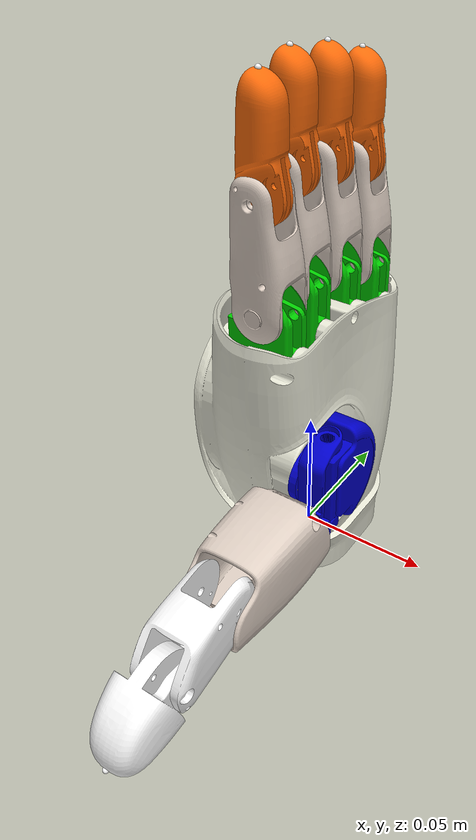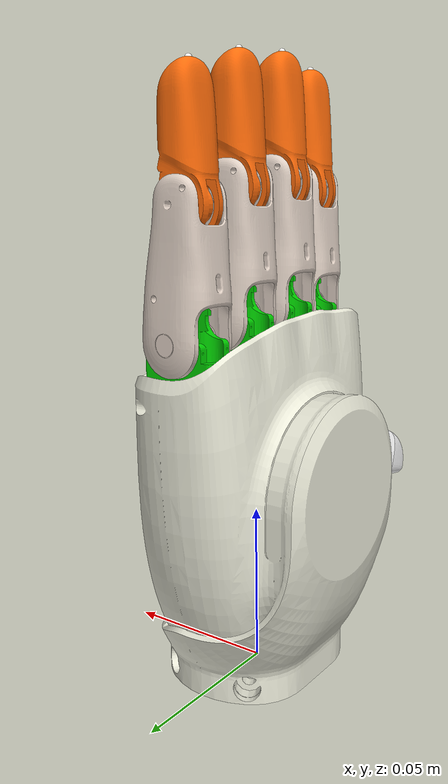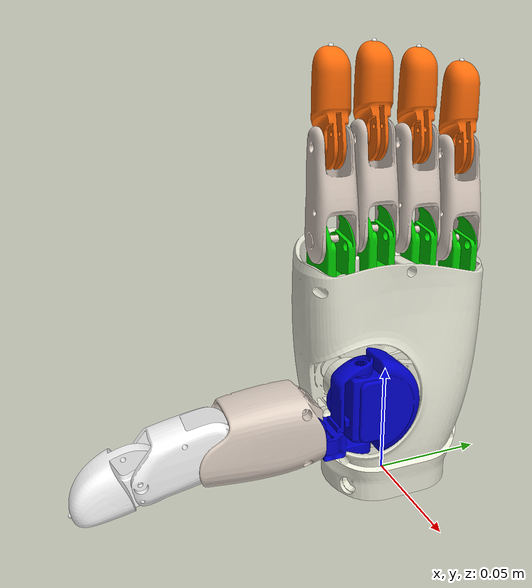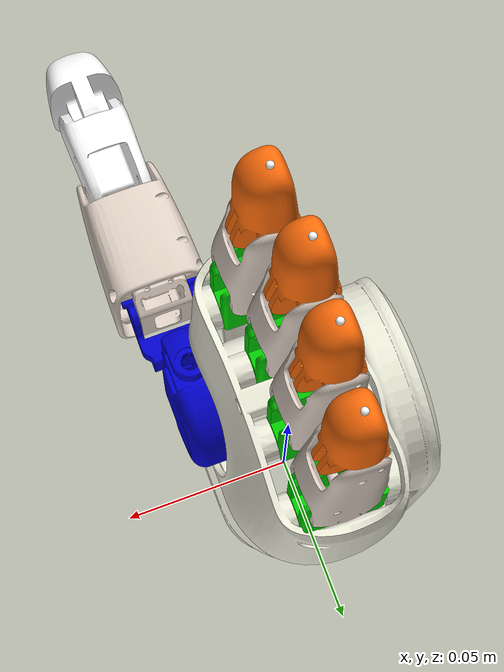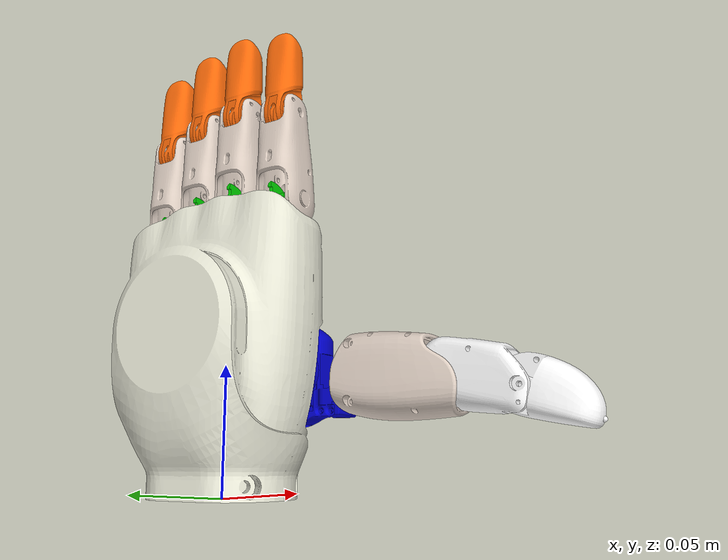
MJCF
<mujoco model="omnihand_left">
  <compiler angle="radian" meshdir="../meshes/" autolimits="true"/>
  <option timestep="0.002" gravity="0 0 -9.81"/>

  <default>
    <joint damping="0.01"/>
    <geom friction="1 0.005 0.001" condim="4"/>
  </default>

  <asset>
    <mesh name="l_palm" file="l_palm.STL"/>
    <mesh name="l_thumb_roll" file="l_thumb_roll.STL"/>
    <mesh name="thumb_abad" file="thumb_abad.STL"/>
    <mesh name="thumb_mcp" file="thumb_mcp.STL"/>
    <mesh name="thumb_pip" file="thumb_pip.STL"/>
    <mesh name="thumb_dip" file="thumb_dip.STL"/>
    <mesh name="finger_abad" file="finger_abad.STL"/>
    <mesh name="finger_pip" file="finger_pip.STL"/>
    <mesh name="finger_dip" file="finger_dip.STL"/>
  </asset>

  <worldbody>
    <body name="base_link" pos="0 0 0">
      <!-- L_palm (fixed to base_link) -->
      <body name="L_palm" pos="0 0 0">
        <inertial pos="0.0035098 -0.0445331 -0.0066051" mass="0.1594"
                  fullinertia="0.0001025 9.973e-05 0.00015087 3.1e-06 9.7e-07 8.3e-07"/>
        <geom type="mesh" mesh="l_palm" rgba="0.914 0.914 0.847 1"/>

        <!-- ========== Thumb chain ========== -->
        <body name="L_thumb_roll" pos="0 -0.018521 0.047551">
          <inertial pos="-0.003851 0.000311 0.008401" mass="0.025"
                    fullinertia="2.86e-06 2.01e-06 3.69e-06 0 3e-08 -5e-08"/>
          <joint name="L_thumb_roll_joint" type="hinge" axis="1 0 0" range="-0.8727 0.1745"/>
          <geom type="mesh" mesh="l_thumb_roll" rgba="0 0 0.8 1"/>

          <body name="L_thumb_abad" pos="0.020801 -0.004292 -0.00052506">
            <inertial pos="-1.2e-06 -0.0129928 -0.0041829" mass="0.0056"
                      fullinertia="1.03e-06 8.8e-07 5.2e-07 0 0 6e-08"/>
            <joint name="L_thumb_abad_joint" type="hinge" axis="0 0 1" range="0 1.7453"/>
            <geom type="mesh" mesh="thumb_abad" euler="0 0 3.14159265" rgba="0 0 0.8 1"/>

            <body name="L_thumb_mcp" pos="0 -0.0265 -0.005275">
              <inertial pos="-1.83e-05 -0.0225829 0.0024013" mass="0.0511"
                        fullinertia="1.274e-05 4.72e-06 1.121e-05 1e-08 0 2.8e-07"/>
              <joint name="L_thumb_mcp_joint" type="hinge" axis="1 0 0" range="-0.8552 0"/>
              <geom type="mesh" mesh="thumb_mcp" euler="0 0 3.14159265" rgba="0.871 0.812 0.765 1"/>

              <body name="L_thumb_pip" pos="0 -0.036231 0.0036755">
                <inertial pos="-1e-06 -0.014461 -0.00415" mass="0.011"
                          fullinertia="1.34e-06 7.9e-07 1.31e-06 0 0 -7e-08"/>
                <joint name="L_thumb_pip_joint" type="hinge" axis="1 0 0" range="-1.14 0"/>
                <geom type="mesh" mesh="thumb_pip" euler="0 0 3.14159265" rgba="1 1 1 1"/>

                <body name="L_thumb_dip" pos="0 -0.026468 -0.0073106">
                  <inertial pos="-3e-06 -0.010392 -0.001614" mass="0.007"
                            fullinertia="5.2e-07 3.3e-07 4.4e-07 0 0 1.6e-07"/>
                  <joint name="L_thumb_dip_joint" type="hinge" axis="1 0 0" range="-1.22 0"/>
                  <geom type="mesh" mesh="thumb_dip" euler="0 0 3.14159265" rgba="1 1 1 1"/>

                  <site name="L_thumb_tip" pos="0 -0.02392 -0.01158" size="0.001" rgba="1 1 1 1"/>
                </body>
              </body>
            </body>
          </body>
        </body>

        <!-- ========== Index finger chain ========== -->
        <body name="L_index_abad" pos="0 -0.02695 0.094548">
          <inertial pos="-0.0018959 -9.8e-06 0.0066855" mass="0.04"
                    fullinertia="7.37e-06 8.82e-06 2.65e-06 0 -1.4e-07 0"/>
          <joint name="L_index_abad_joint" type="hinge" axis="1 0 0" range="0 0.2094"/>
          <geom type="mesh" mesh="finger_abad" rgba="0 0.8 0 1"/>

          <body name="L_index_pip" pos="0.00048163 0 0.017575">
            <inertial pos="-0.002884 1.5e-06 0.019997" mass="0.004"
                      fullinertia="7e-07 6.8e-07 2.6e-07 0 1e-08 0"/>
            <joint name="L_index_pip_joint" type="hinge" axis="0 1 0" range="0 1.5708"/>
            <geom type="mesh" mesh="finger_pip" rgba="0.871 0.812 0.765 1"/>

            <body name="L_index_dip" pos="-0.0015 0 0.036">
              <inertial pos="0.000618 0 0.019239" mass="0.003"
                        fullinertia="4e-07 4e-07 1.2e-07 0 0 0"/>
              <joint name="L_index_dip_joint" type="hinge" axis="0 1 0" range="0 2.03"/>
              <geom type="mesh" mesh="finger_dip" rgba="1 0.424 0.039 1"/>

              <site name="L_index_tip" pos="-0.0011 0 0.03612" size="0.001" rgba="1 1 1 1"/>
            </body>
          </body>
        </body>

        <!-- ========== Middle finger chain (abad is fixed) ========== -->
        <body name="L_middle_abad" pos="-0.0025 -0.00795 0.096548">
          <inertial pos="-0.0018959 -9.8e-06 0.0066855" mass="0.04"
                    fullinertia="7.37e-06 8.82e-06 2.65e-06 0 -1.4e-07 0"/>
          <geom type="mesh" mesh="finger_abad" rgba="0 0.8 0 1"/>

          <body name="L_middle_pip" pos="0.00048163 0 0.017575">
            <inertial pos="-0.002884 1.5e-06 0.019997" mass="0.004"
                      fullinertia="7e-07 6.8e-07 2.6e-07 0 1e-08 0"/>
            <joint name="L_middle_pip_joint" type="hinge" axis="0 1 0" range="0 1.5708"/>
            <geom type="mesh" mesh="finger_pip" rgba="0.871 0.812 0.765 1"/>

            <body name="L_middle_dip" pos="-0.0015 0 0.036">
              <inertial pos="0.000618 0 0.019239" mass="0.003"
                        fullinertia="4e-07 4e-07 1.2e-07 0 0 0"/>
              <joint name="L_middle_dip_joint" type="hinge" axis="0 1 0" range="0 2.03"/>
              <geom type="mesh" mesh="finger_dip" rgba="1 0.424 0.039 1"/>

              <site name="L_middle_tip" pos="-0.0011 0 0.03612" size="0.001" rgba="1 1 1 1"/>
            </body>
          </body>
        </body>

        <!-- ========== Ring finger chain ========== -->
        <body name="L_ring_abad" pos="-0.00151 0.01105 0.094548">
          <inertial pos="-0.0018959 -9.8e-06 0.0066855" mass="0.04"
                    fullinertia="7.37e-06 8.82e-06 2.65e-06 0 -1.4e-07 0"/>
          <joint name="L_ring_abad_joint" type="hinge" axis="1 0 0" range="-0.1745 0"/>
          <geom type="mesh" mesh="finger_abad" rgba="0 0.8 0 1"/>

          <body name="L_ring_pip" pos="0.00048163 0 0.017575">
            <inertial pos="-0.002884 1.5e-06 0.019997" mass="0.004"
                      fullinertia="7e-07 6.8e-07 2.6e-07 0 1e-08 0"/>
            <joint name="L_ring_pip_joint" type="hinge" axis="0 1 0" range="0 1.5708"/>
            <geom type="mesh" mesh="finger_pip" rgba="0.871 0.812 0.765 1"/>

            <body name="L_ring_dip" pos="-0.0015 0 0.036">
              <inertial pos="0.000618 0 0.019239" mass="0.003"
                        fullinertia="4e-07 4e-07 1.2e-07 0 0 0"/>
              <joint name="L_ring_dip_joint" type="hinge" axis="0 1 0" range="0 2.03"/>
              <geom type="mesh" mesh="finger_dip" rgba="1 0.424 0.039 1"/>

              <site name="L_ring_tip" pos="-0.0011 0 0.03612" size="0.001" rgba="1 1 1 1"/>
            </body>
          </body>
        </body>

        <!-- ========== Pinky finger chain ========== -->
        <body name="L_pinky_abad" pos="0 0.03005 0.089548">
          <inertial pos="-0.0018959 -9.8e-06 0.0066855" mass="0.04"
                    fullinertia="7.37e-06 8.82e-06 2.65e-06 0 -1.4e-07 0"/>
          <joint name="L_pinky_abad_joint" type="hinge" axis="1 0 0" range="-0.1745 0"/>
          <geom type="mesh" mesh="finger_abad" rgba="0 0.8 0 1"/>

          <body name="L_pinky_pip" pos="0.00048163 0 0.017575">
            <inertial pos="-0.002884 1.5e-06 0.019997" mass="0.004"
                      fullinertia="7e-07 6.8e-07 2.6e-07 0 1e-08 0"/>
            <joint name="L_pinky_pip_joint" type="hinge" axis="0 1 0" range="0 1.5708"/>
            <geom type="mesh" mesh="finger_pip" rgba="0.871 0.812 0.765 1"/>

            <body name="L_pinky_dip" pos="-0.0015 0 0.036">
              <inertial pos="0.000618 0 0.019239" mass="0.003"
                        fullinertia="4e-07 4e-07 1.2e-07 0 0 0"/>
              <joint name="L_pinky_dip_joint" type="hinge" axis="0 1 0" range="0 2.03"/>
              <geom type="mesh" mesh="finger_dip" rgba="1 0.424 0.039 1"/>

              <site name="L_pinky_tip" pos="-0.0011 0 0.03612" size="0.001" rgba="1 1 1 1"/>
            </body>
          </body>
        </body>

      </body>
    </body>
  </worldbody>

  <!-- Mimic joint equality constraints -->
  <equality>
    <joint joint1="L_thumb_pip_joint" joint2="L_thumb_mcp_joint" polycoef="0 1.33 0 0 0"/>
    <joint joint1="L_thumb_dip_joint" joint2="L_thumb_mcp_joint" polycoef="0 1.42 0 0 0"/>
    <joint joint1="L_index_dip_joint" joint2="L_index_pip_joint" polycoef="0 1.29 0 0 0"/>
    <joint joint1="L_middle_dip_joint" joint2="L_middle_pip_joint" polycoef="0 1.29 0 0 0"/>
    <joint joint1="L_ring_dip_joint" joint2="L_ring_pip_joint" polycoef="0 1.29 0 0 0"/>
    <joint joint1="L_pinky_dip_joint" joint2="L_pinky_pip_joint" polycoef="0 1.29 0 0 0"/>
  </equality>

  <!-- Position actuators (matching ros2_control joints) -->
  <actuator>
    <position name="L_thumb_roll_act" joint="L_thumb_roll_joint" kp="50" ctrlrange="-0.8727 0.1745"/>
    <position name="L_thumb_abad_act" joint="L_thumb_abad_joint" kp="50" ctrlrange="0 1.7453"/>
    <position name="L_thumb_mcp_act" joint="L_thumb_mcp_joint" kp="50" ctrlrange="-0.8552 0"/>
    <position name="L_index_abad_act" joint="L_index_abad_joint" kp="50" ctrlrange="0 0.2094"/>
    <position name="L_index_pip_act" joint="L_index_pip_joint" kp="50" ctrlrange="0 1.5708"/>
    <position name="L_middle_pip_act" joint="L_middle_pip_joint" kp="50" ctrlrange="0 1.5708"/>
    <position name="L_ring_abad_act" joint="L_ring_abad_joint" kp="50" ctrlrange="-0.1745 0"/>
    <position name="L_ring_pip_act" joint="L_ring_pip_joint" kp="50" ctrlrange="0 1.5708"/>
    <position name="L_pinky_abad_act" joint="L_pinky_abad_joint" kp="50" ctrlrange="-0.1745 0"/>
    <position name="L_pinky_pip_act" joint="L_pinky_pip_joint" kp="50" ctrlrange="0 1.5708"/>
  </actuator>
</mujoco>
